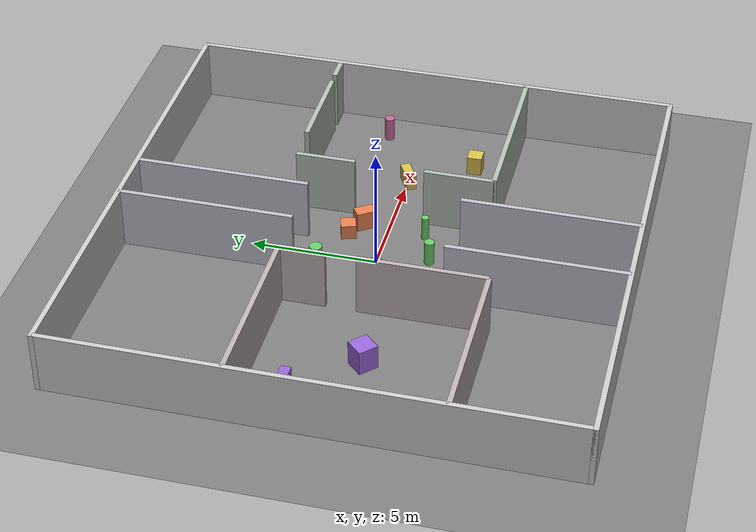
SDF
<?xml version="1.0" ?>
<sdf version="1.8">
  <world name="slam_nav_world">

    <!-- ═══════════════════════════════════════════
         PLUGINS
    ═══════════════════════════════════════════ -->
    <plugin filename="gz-sim-physics-system"
            name="gz::sim::systems::Physics"/>
    <plugin filename="gz-sim-user-commands-system"
            name="gz::sim::systems::UserCommands"/>
    <plugin filename="gz-sim-scene-broadcaster-system"
            name="gz::sim::systems::SceneBroadcaster"/>
    <plugin filename="gz-sim-sensors-system"
            name="gz::sim::systems::Sensors">
      <render_engine>ogre2</render_engine>
    </plugin>

    <!-- ═══════════════════════════════════════════
         LIGHTING
    ═══════════════════════════════════════════ -->
    <light type="directional" name="sun">
      <cast_shadows>true</cast_shadows>
      <pose>0 0 15 0 0 0</pose>
      <diffuse>0.9 0.9 0.9 1</diffuse>
      <specular>0.3 0.3 0.3 1</specular>
      <direction>-0.5 0.1 -0.9</direction>
      <attenuation>
        <range>1000</range>
        <constant>0.9</constant>
        <linear>0.01</linear>
        <quadratic>0.001</quadratic>
      </attenuation>
    </light>

    <light type="point" name="ceiling_light_1">
      <pose>0 0 4 0 0 0</pose>
      <diffuse>0.8 0.8 1.0 1</diffuse>
      <specular>0.1 0.1 0.1 1</specular>
      <attenuation>
        <range>20</range>
        <constant>0.5</constant>
        <linear>0.05</linear>
        <quadratic>0.01</quadratic>
      </attenuation>
    </light>

    <light type="point" name="ceiling_light_2">
      <pose>8 8 4 0 0 0</pose>
      <diffuse>0.8 0.8 1.0 1</diffuse>
      <specular>0.1 0.1 0.1 1</specular>
      <attenuation>
        <range>20</range>
        <constant>0.5</constant>
        <linear>0.05</linear>
        <quadratic>0.01</quadratic>
      </attenuation>
    </light>

    <light type="point" name="ceiling_light_3">
      <pose>-8 -8 4 0 0 0</pose>
      <diffuse>0.8 0.8 1.0 1</diffuse>
      <specular>0.1 0.1 0.1 1</specular>
      <attenuation>
        <range>20</range>
        <constant>0.5</constant>
        <linear>0.05</linear>
        <quadratic>0.01</quadratic>
      </attenuation>
    </light>

    <!-- ═══════════════════════════════════════════
         GROUND PLANE
    ═══════════════════════════════════════════ -->
    <model name="ground_plane">
      <static>true</static>
      <link name="link">
        <collision name="collision">
          <geometry>
            <plane>
              <normal>0 0 1</normal>
              <size>200 200</size>
            </plane>
          </geometry>
        </collision>
        <visual name="visual">
          <geometry>
            <plane>
              <normal>0 0 1</normal>
              <size>200 200</size>
            </plane>
          </geometry>
          <material>
            <ambient>0.4 0.4 0.4 1</ambient>
            <diffuse>0.5 0.5 0.5 1</diffuse>
            <specular>0.1 0.1 0.1 1</specular>
          </material>
        </visual>
      </link>
    </model>

    <!-- ═══════════════════════════════════════════
         OUTER BOUNDARY WALLS  (20×20m arena)
         Wall thickness: 0.2m, height: 2.5m
    ═══════════════════════════════════════════ -->

    <!-- North outer wall -->
    <model name="outer_wall_north">
      <static>true</static>
      <pose>0 10 1.25 0 0 0</pose>
      <link name="link">
        <collision name="collision">
          <geometry><box><size>20.2 0.2 2.5</size></box></geometry>
        </collision>
        <visual name="visual">
          <geometry><box><size>20.2 0.2 2.5</size></box></geometry>
          <material>
            <ambient>0.7 0.7 0.7 1</ambient>
            <diffuse>0.8 0.8 0.8 1</diffuse>
          </material>
        </visual>
      </link>
    </model>

    <!-- South outer wall -->
    <model name="outer_wall_south">
      <static>true</static>
      <pose>0 -10 1.25 0 0 0</pose>
      <link name="link">
        <collision name="collision">
          <geometry><box><size>20.2 0.2 2.5</size></box></geometry>
        </collision>
        <visual name="visual">
          <geometry><box><size>20.2 0.2 2.5</size></box></geometry>
          <material>
            <ambient>0.7 0.7 0.7 1</ambient>
            <diffuse>0.8 0.8 0.8 1</diffuse>
          </material>
        </visual>
      </link>
    </model>

    <!-- East outer wall -->
    <model name="outer_wall_east">
      <static>true</static>
      <pose>10 0 1.25 0 0 0</pose>
      <link name="link">
        <collision name="collision">
          <geometry><box><size>0.2 20 2.5</size></box></geometry>
        </collision>
        <visual name="visual">
          <geometry><box><size>0.2 20 2.5</size></box></geometry>
          <material>
            <ambient>0.7 0.7 0.7 1</ambient>
            <diffuse>0.8 0.8 0.8 1</diffuse>
          </material>
        </visual>
      </link>
    </model>

    <!-- West outer wall -->
    <model name="outer_wall_west">
      <static>true</static>
      <pose>-10 0 1.25 0 0 0</pose>
      <link name="link">
        <collision name="collision">
          <geometry><box><size>0.2 20 2.5</size></box></geometry>
        </collision>
        <visual name="visual">
          <geometry><box><size>0.2 20 2.5</size></box></geometry>
          <material>
            <ambient>0.7 0.7 0.7 1</ambient>
            <diffuse>0.8 0.8 0.8 1</diffuse>
          </material>
        </visual>
      </link>
    </model>

    <!-- ── North corridor walls (Y: 3 to 10, width: 2m) ── -->
    <model name="corridor_north_wall_west">
      <static>true</static>
      <!-- Left wall of north corridor, gap at Y=3 is the doorway -->
      <pose>-1.1 6.5 1.25 0 0 0</pose>
      <link name="link">
        <collision name="collision">
          <geometry><box><size>0.2 7 2.5</size></box></geometry>
        </collision>
        <visual name="visual">
          <geometry><box><size>0.2 7 2.5</size></box></geometry>
          <material><ambient>0.65 0.65 0.7 1</ambient><diffuse>0.75 0.75 0.8 1</diffuse></material>
        </visual>
      </link>
    </model>

    <model name="corridor_north_wall_east">
      <static>true</static>
      <pose>1.1 6.5 1.25 0 0 0</pose>
      <link name="link">
        <collision name="collision">
          <geometry><box><size>0.2 7 2.5</size></box></geometry>
        </collision>
        <visual name="visual">
          <geometry><box><size>0.2 7 2.5</size></box></geometry>
          <material><ambient>0.65 0.65 0.7 1</ambient><diffuse>0.75 0.75 0.8 1</diffuse></material>
        </visual>
      </link>
    </model>

    <!-- ── East room (X: 3 to 10, Y: -4 to 4) ── -->
    <!-- South wall of east room -->
    <model name="east_room_wall_south">
      <static>true</static>
      <pose>6.5 -4 1.25 0 0 0</pose>
      <link name="link">
        <collision name="collision">
          <geometry><box><size>7 0.2 2.5</size></box></geometry>
        </collision>
        <visual name="visual">
          <geometry><box><size>7 0.2 2.5</size></box></geometry>
          <material><ambient>0.6 0.65 0.6 1</ambient><diffuse>0.7 0.75 0.7 1</diffuse></material>
        </visual>
      </link>
    </model>

    <!-- North wall of east room (with 1.2m doorway gap at Y=2 to 3.2) -->
    <model name="east_room_wall_north_a">
      <static>true</static>
      <pose>6.5 4 1.25 0 0 0</pose>
      <link name="link">
        <collision name="collision">
          <geometry><box><size>4 0.2 2.5</size></box></geometry>
        </collision>
        <visual name="visual">
          <geometry><box><size>4 0.2 2.5</size></box></geometry>
          <material><ambient>0.6 0.65 0.6 1</ambient><diffuse>0.7 0.75 0.7 1</diffuse></material>
        </visual>
      </link>
    </model>
    <model name="east_room_wall_north_b">
      <static>true</static>
      <pose>9.4 4 1.25 0 0 0</pose>
      <link name="link">
        <collision name="collision">
          <geometry><box><size>1.0 0.2 2.5</size></box></geometry>
        </collision>
        <visual name="visual">
          <geometry><box><size>1.0 0.2 2.5</size></box></geometry>
          <material><ambient>0.6 0.65 0.6 1</ambient><diffuse>0.7 0.75 0.7 1</diffuse></material>
        </visual>
      </link>
    </model>

    <!-- West wall of east room (doorway gap at X=3, Y=-0.6 to 0.6) -->
    <model name="east_room_wall_west_a">
      <static>true</static>
      <pose>3 -2.6 1.25 0 0 0</pose>
      <link name="link">
        <collision name="collision">
          <geometry><box><size>0.2 2.8 2.5</size></box></geometry>
        </collision>
        <visual name="visual">
          <geometry><box><size>0.2 2.8 2.5</size></box></geometry>
          <material><ambient>0.6 0.65 0.6 1</ambient><diffuse>0.7 0.75 0.7 1</diffuse></material>
        </visual>
      </link>
    </model>
    <model name="east_room_wall_west_b">
      <static>true</static>
      <pose>3 2.8 1.25 0 0 0</pose>
      <link name="link">
        <collision name="collision">
          <geometry><box><size>0.2 2.4 2.5</size></box></geometry>
        </collision>
        <visual name="visual">
          <geometry><box><size>0.2 2.4 2.5</size></box></geometry>
          <material><ambient>0.6 0.65 0.6 1</ambient><diffuse>0.7 0.75 0.7 1</diffuse></material>
        </visual>
      </link>
    </model>

    <!-- ── West room (X: -10 to -3, Y: -5 to 3) ── -->
    <model name="west_room_wall_north">
      <static>true</static>
      <pose>-6.5 3 1.25 0 0 0</pose>
      <link name="link">
        <collision name="collision">
          <geometry><box><size>7 0.2 2.5</size></box></geometry>
        </collision>
        <visual name="visual">
          <geometry><box><size>7 0.2 2.5</size></box></geometry>
          <material><ambient>0.65 0.6 0.6 1</ambient><diffuse>0.75 0.7 0.7 1</diffuse></material>
        </visual>
      </link>
    </model>

    <model name="west_room_wall_south">
      <static>true</static>
      <pose>-6.5 -5 1.25 0 0 0</pose>
      <link name="link">
        <collision name="collision">
          <geometry><box><size>7 0.2 2.5</size></box></geometry>
        </collision>
        <visual name="visual">
          <geometry><box><size>7 0.2 2.5</size></box></geometry>
          <material><ambient>0.65 0.6 0.6 1</ambient><diffuse>0.75 0.7 0.7 1</diffuse></material>
        </visual>
      </link>
    </model>

    <!-- East wall of west room — doorway gap at Y=0 to 1.2 -->
    <model name="west_room_wall_east_a">
      <static>true</static>
      <pose>-3 -2.5 1.25 0 0 0</pose>
      <link name="link">
        <collision name="collision">
          <geometry><box><size>0.2 5 2.5</size></box></geometry>
        </collision>
        <visual name="visual">
          <geometry><box><size>0.2 5 2.5</size></box></geometry>
          <material><ambient>0.65 0.6 0.6 1</ambient><diffuse>0.75 0.7 0.7 1</diffuse></material>
        </visual>
      </link>
    </model>
    <model name="west_room_wall_east_b">
      <static>true</static>
      <pose>-3 2.1 1.25 0 0 0</pose>
      <link name="link">
        <collision name="collision">
          <geometry><box><size>0.2 1.8 2.5</size></box></geometry>
        </collision>
        <visual name="visual">
          <geometry><box><size>0.2 1.8 2.5</size></box></geometry>
          <material><ambient>0.65 0.6 0.6 1</ambient><diffuse>0.75 0.7 0.7 1</diffuse></material>
        </visual>
      </link>
    </model>

    <!-- ── South dead-end corridor (Y: -10 to -3, X: -1.5 to 1.5) ── -->
    <model name="corridor_south_wall_west">
      <static>true</static>
      <pose>-1.5 -6.5 1.25 0 0 0</pose>
      <link name="link">
        <collision name="collision">
          <geometry><box><size>0.2 7 2.5</size></box></geometry>
        </collision>
        <visual name="visual">
          <geometry><box><size>0.2 7 2.5</size></box></geometry>
          <material><ambient>0.65 0.65 0.7 1</ambient><diffuse>0.75 0.75 0.8 1</diffuse></material>
        </visual>
      </link>
    </model>
    <model name="corridor_south_wall_east">
      <static>true</static>
      <pose>1.5 -6.5 1.25 0 0 0</pose>
      <link name="link">
        <collision name="collision">
          <geometry><box><size>0.2 7 2.5</size></box></geometry>
        </collision>
        <visual name="visual">
          <geometry><box><size>0.2 7 2.5</size></box></geometry>
          <material><ambient>0.65 0.65 0.7 1</ambient><diffuse>0.75 0.75 0.8 1</diffuse></material>
        </visual>
      </link>
    </model>

    <!-- ═══════════════════════════════════════════
         OBSTACLES — Central open area
         Mix of boxes and cylinders for nav testing
    ═══════════════════════════════════════════ -->

    <!-- Box obstacle cluster A -->
    <model name="box_obs_1">
      <static>true</static>
      <pose>1.5 1.5 0.3 0 0 0.3</pose>
      <link name="link">
        <collision name="collision"><geometry><box><size>0.6 0.6 0.6</size></box></geometry></collision>
        <visual name="visual">
          <geometry><box><size>0.6 0.6 0.6</size></box></geometry>
          <material><ambient>0.8 0.4 0.2 1</ambient><diffuse>0.9 0.5 0.3 1</diffuse></material>
        </visual>
      </link>
    </model>

    <model name="box_obs_2">
      <static>true</static>
      <pose>2.2 1.0 0.4 0 0 0.6</pose>
      <link name="link">
        <collision name="collision"><geometry><box><size>0.5 0.8 0.8</size></box></geometry></collision>
        <visual name="visual">
          <geometry><box><size>0.5 0.8 0.8</size></box></geometry>
          <material><ambient>0.8 0.4 0.2 1</ambient><diffuse>0.9 0.5 0.3 1</diffuse></material>
        </visual>
      </link>
    </model>

    <!-- Box obstacle cluster B (south-west quadrant) -->
    <model name="box_obs_3">
      <static>true</static>
      <pose>-1.8 -1.2 0.35 0 0 1.1</pose>
      <link name="link">
        <collision name="collision"><geometry><box><size>0.7 0.4 0.7</size></box></geometry></collision>
        <visual name="visual">
          <geometry><box><size>0.7 0.4 0.7</size></box></geometry>
          <material><ambient>0.2 0.5 0.8 1</ambient><diffuse>0.3 0.6 0.9 1</diffuse></material>
        </visual>
      </link>
    </model>

    <model name="box_obs_4">
      <static>true</static>
      <pose>-2.5 -0.5 0.25 0 0 0</pose>
      <link name="link">
        <collision name="collision"><geometry><box><size>0.5 0.5 0.5</size></box></geometry></collision>
        <visual name="visual">
          <geometry><box><size>0.5 0.5 0.5</size></box></geometry>
          <material><ambient>0.2 0.5 0.8 1</ambient><diffuse>0.3 0.6 0.9 1</diffuse></material>
        </visual>
      </link>
    </model>

    <!-- Cylinder obstacles (pillar-like, good for LiDAR feature extraction) -->
    <model name="cyl_obs_1">
      <static>true</static>
      <pose>0.5 -2.0 0.5 0 0 0</pose>
      <link name="link">
        <collision name="collision"><geometry><cylinder><radius>0.2</radius><length>1.0</length></cylinder></geometry></collision>
        <visual name="visual">
          <geometry><cylinder><radius>0.2</radius><length>1.0</length></cylinder></geometry>
          <material><ambient>0.3 0.7 0.3 1</ambient><diffuse>0.4 0.8 0.4 1</diffuse></material>
        </visual>
      </link>
    </model>

    <model name="cyl_obs_2">
      <static>true</static>
      <pose>-0.8 2.2 0.5 0 0 0</pose>
      <link name="link">
        <collision name="collision"><geometry><cylinder><radius>0.25</radius><length>1.0</length></cylinder></geometry></collision>
        <visual name="visual">
          <geometry><cylinder><radius>0.25</radius><length>1.0</length></cylinder></geometry>
          <material><ambient>0.3 0.7 0.3 1</ambient><diffuse>0.4 0.8 0.4 1</diffuse></material>
        </visual>
      </link>
    </model>

    <model name="cyl_obs_3">
      <static>true</static>
      <pose>2.0 -1.5 0.5 0 0 0</pose>
      <link name="link">
        <collision name="collision"><geometry><cylinder><radius>0.15</radius><length>1.0</length></cylinder></geometry></collision>
        <visual name="visual">
          <geometry><cylinder><radius>0.15</radius><length>1.0</length></cylinder></geometry>
          <material><ambient>0.3 0.7 0.3 1</ambient><diffuse>0.4 0.8 0.4 1</diffuse></material>
        </visual>
      </link>
    </model>

    <!-- ═══════════════════════════════════════════
         OBSTACLES — East room
    ═══════════════════════════════════════════ -->
    <model name="east_room_box_1">
      <static>true</static>
      <pose>5.5 0 0.3 0 0 0.5</pose>
      <link name="link">
        <collision name="collision"><geometry><box><size>1.0 0.4 0.6</size></box></geometry></collision>
        <visual name="visual">
          <geometry><box><size>1.0 0.4 0.6</size></box></geometry>
          <material><ambient>0.7 0.6 0.2 1</ambient><diffuse>0.85 0.75 0.3 1</diffuse></material>
        </visual>
      </link>
    </model>

    <model name="east_room_box_2">
      <static>true</static>
      <pose>7.0 -2.5 0.4 0 0 0</pose>
      <link name="link">
        <collision name="collision"><geometry><box><size>0.6 0.6 0.8</size></box></geometry></collision>
        <visual name="visual">
          <geometry><box><size>0.6 0.6 0.8</size></box></geometry>
          <material><ambient>0.7 0.6 0.2 1</ambient><diffuse>0.85 0.75 0.3 1</diffuse></material>
        </visual>
      </link>
    </model>

    <model name="east_room_cyl_1">
      <static>true</static>
      <pose>8.5 1.5 0.5 0 0 0</pose>
      <link name="link">
        <collision name="collision"><geometry><cylinder><radius>0.2</radius><length>1.0</length></cylinder></geometry></collision>
        <visual name="visual">
          <geometry><cylinder><radius>0.2</radius><length>1.0</length></cylinder></geometry>
          <material><ambient>0.7 0.3 0.5 1</ambient><diffuse>0.8 0.4 0.6 1</diffuse></material>
        </visual>
      </link>
    </model>

    <!-- ═══════════════════════════════════════════
         OBSTACLES — West room
    ═══════════════════════════════════════════ -->
    <model name="west_room_box_1">
      <static>true</static>
      <pose>-6.0 -1.0 0.5 0 0 0.8</pose>
      <link name="link">
        <collision name="collision"><geometry><box><size>0.8 0.8 1.0</size></box></geometry></collision>
        <visual name="visual">
          <geometry><box><size>0.8 0.8 1.0</size></box></geometry>
          <material><ambient>0.5 0.3 0.7 1</ambient><diffuse>0.6 0.4 0.85 1</diffuse></material>
        </visual>
      </link>
    </model>

    <model name="west_room_box_2">
      <static>true</static>
      <pose>-8.0 1.5 0.3 0 0 0</pose>
      <link name="link">
        <collision name="collision"><geometry><box><size>1.2 0.4 0.6</size></box></geometry></collision>
        <visual name="visual">
          <geometry><box><size>1.2 0.4 0.6</size></box></geometry>
          <material><ambient>0.5 0.3 0.7 1</ambient><diffuse>0.6 0.4 0.85 1</diffuse></material>
        </visual>
      </link>
    </model>

    <!-- ═══════════════════════════════════════════
         OBSTACLES — Corridors
    ═══════════════════════════════════════════ -->
    <!-- Narrow box in north corridor (forces careful path planning) -->
    <model name="corridor_north_box">
      <static>true</static>
      <pose>0 5.5 0.3 0 0 0</pose>
      <link name="link">
        <collision name="collision"><geometry><box><size>0.8 0.4 0.6</size></box></geometry></collision>
        <visual name="visual">
          <geometry><box><size>0.8 0.4 0.6</size></box></geometry>
          <material><ambient>0.9 0.4 0.4 1</ambient><diffuse>1.0 0.5 0.5 1</diffuse></material>
        </visual>
      </link>
    </model>

    <!-- Object in south corridor -->
    <model name="corridor_south_box">
      <static>true</static>
      <pose>0 -7.5 0.3 0 0 0.4</pose>
      <link name="link">
        <collision name="collision"><geometry><box><size>0.5 0.5 0.6</size></box></geometry></collision>
        <visual name="visual">
          <geometry><box><size>0.5 0.5 0.6</size></box></geometry>
          <material><ambient>0.9 0.4 0.4 1</ambient><diffuse>1.0 0.5 0.5 1</diffuse></material>
        </visual>
      </link>
    </model>

    <!-- ═══════════════════════════════════════════
         SPAWN POINT MARKER (origin, robot starts here)
         Thin flat disk so it's visible from above
    ═══════════════════════════════════════════ -->
    <model name="spawn_marker">
      <static>true</static>
      <pose>0 0 0.01 0 0 0</pose>
      <link name="link">
        <visual name="visual">
          <geometry><cylinder><radius>0.3</radius><length>0.02</length></cylinder></geometry>
          <material><ambient>0.1 0.9 0.1 1</ambient><diffuse>0.2 1.0 0.2 1</diffuse></material>
        </visual>
      </link>
    </model>

  </world>
</sdf>
